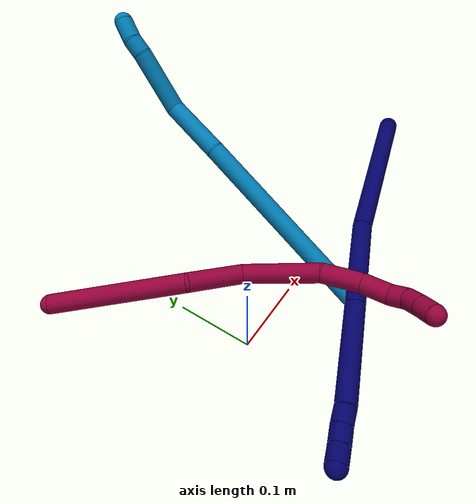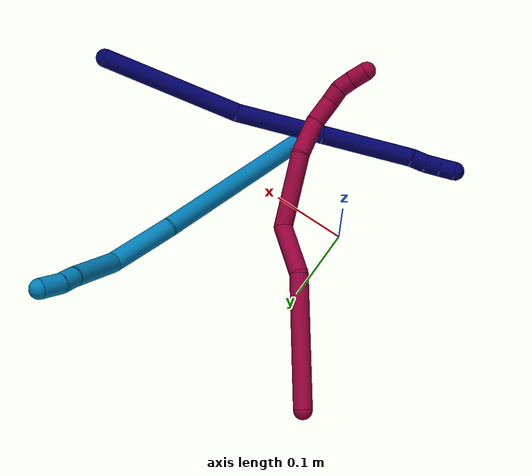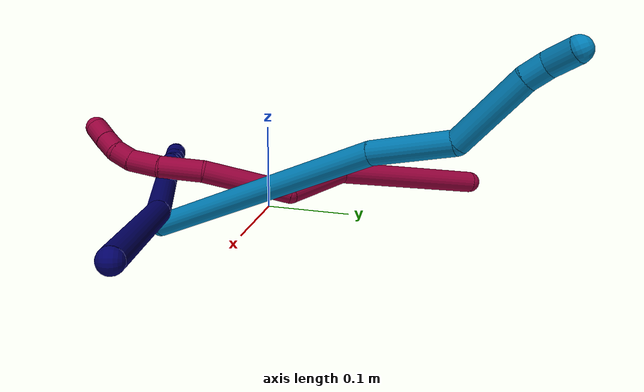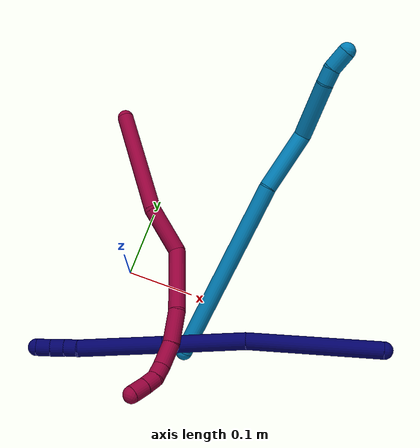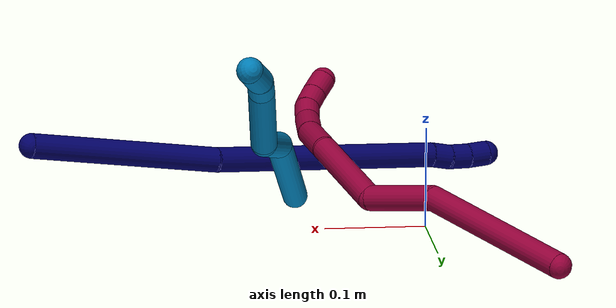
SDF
<sdf version="1.7">
 <world name="default">
  <model name="photoneo_s_sensor">
   <static>1</static>
   <pose>0 0 2 1.57079 1.57079 3.14159</pose>
   <link name="link">
    <inertial><mass>0.1</mass></inertial>
    <sensor name="sensor" type="depth">
     <update_rate>30</update_rate>
     <camera>
      <horizontal_fov>1.22</horizontal_fov>
      <image><width>1920</width><height>1200</height><format>B8G8R8</format></image>
      <clip><near>0.1</near><far>4</far></clip>
      <depth_camera><output>points</output></depth_camera>
     </camera>
     <plugin name="camera_plugin" filename="libgazebo_ros_depth_camera.so">
      <baseline>0.2</baseline>
      <alwaysOn>1</alwaysOn>
      <updateRate>0.0</updateRate>
      <cameraName>camera_ir</cameraName>
      <imageTopicName>/camera/color/image_raw</imageTopicName>
      <cameraInfoTopicName>/camera/color/camera_info</cameraInfoTopicName>
      <depthImageTopicName>/camera/depth/image_raw</depthImageTopicName>
      <depthImageCameraInfoTopicName>/camera/depth/camera_info</depthImageCameraInfoTopicName>
      <pointCloudTopicName>/camera/depth/points</pointCloudTopicName>
      <frameName>fr_optical</frameName>
      <pointCloudCutoff>0.1</pointCloudCutoff>
      <pointCloudCutoffMax>2.0</pointCloudCutoffMax>
      <distortionK1>0</distortionK1>
      <distortionK2>0</distortionK2>
      <distortionK3>0</distortionK3>
      <distortionT1>0</distortionT1>
      <distortionT2>0</distortionT2>
      <CxPrime>0</CxPrime>
      <Cx>0</Cx>
      <Cy>0</Cy>
      <focalLength>0</focalLength>
      <hackBaseline>0</hackBaseline>
     </plugin>
    </sensor>
   </link>
  </model>
  <model name="bin">
   <static>1</static>
   <link name="bottom">
    <collision name="collision-bottom">
     <pose>0 0 -0.01 0 -0 0</pose>
     <geometry><box><size>0.8 0.6 0.02</size></box></geometry>
     <surface>
      <friction><ode><mu>100</mu><mu2>100</mu2></ode></friction>
      <contact><collide_bitmask>65535</collide_bitmask></contact>
     </surface>
    </collision>
   </link>
   <link name="west_wall">
    <collision name="collision-west_wall">
     <pose>-0.41 0 0.1 0 -0 0</pose>
     <geometry><box><size>0.02 0.6 0.2</size></box></geometry>
     <surface>
      <friction><ode><mu>100</mu><mu2>100</mu2></ode></friction>
      <contact><collide_bitmask>65535</collide_bitmask></contact>
     </surface>
    </collision>
   </link>
   <link name="east_wall">
    <collision name="collision-east_wall">
     <pose>0.41 0 0.1 0 -0 0</pose>
     <geometry><box><size>0.02 0.6 0.2</size></box></geometry>
     <surface>
      <friction><ode><mu>100</mu><mu2>100</mu2></ode></friction>
      <contact><collide_bitmask>65535</collide_bitmask></contact>
     </surface>
    </collision>
   </link>
   <link name="south_wall">
    <collision name="collision-south_wall">
     <pose>0 -0.31 0.1 0 -0 0</pose>
     <geometry><box><size>0.8 0.02 0.2</size></box></geometry>
     <surface>
      <friction><ode><mu>100</mu><mu2>100</mu2></ode></friction>
      <contact><collide_bitmask>65535</collide_bitmask></contact>
     </surface>
    </collision>
   </link>
   <link name="north_wall">
    <collision name="collision-north_wall">
     <pose>0 0.31 0.1 0 -0 0</pose>
     <geometry><box><size>0.8 0.02 0.2</size></box></geometry>
     <surface>
      <friction><ode><mu>100</mu><mu2>100</mu2></ode></friction>
      <contact><collide_bitmask>65535</collide_bitmask></contact>
     </surface>
    </collision>
   </link>
  </model>
  <model name="7">
   <static>0</static>
   <link name="7">
    <collision name="collision-cylinder-e_1_1_4">
     <pose>-0.082771 -0.049845 -0.006833 1.70704 -1.02464 -1.14538</pose>
     <geometry><cylinder><radius>0.0125</radius><length>0.193723</length></cylinder></geometry>
     <surface>
      <friction><ode><mu>1.16</mu><mu2>1.16</mu2><slip1>0</slip1><slip2>0</slip2></ode></friction>
      <contact><ode><kp>1e+06</kp><kd>1</kd><max_vel>0</max_vel><min_depth>0.001</min_depth></ode></contact>
     </surface>
    </collision>
    <visual name="visual-cylinder-e_1_1_4">
     <pose>-0.082771 -0.049845 -0.006833 1.70704 -1.02464 -1.14538</pose>
     <geometry><cylinder><radius>0.0125</radius><length>0.193723</length></cylinder></geometry>
     <material><ambient>0.003922 0 0.403922 1</ambient></material>
    </visual>
    <collision name="collision-cylinder-e_2_4_5">
     <pose>-0.218828 -0.127356 -0.010363 1.45195 -1.089 -0.986477</pose>
     <geometry><cylinder><radius>0.0125</radius><length>0.120264</length></cylinder></geometry>
     <surface>
      <friction><ode><mu>1.16</mu><mu2>1.16</mu2><slip1>0</slip1><slip2>0</slip2></ode></friction>
      <contact><ode><kp>1e+06</kp><kd>1</kd><max_vel>0</max_vel><min_depth>0.001</min_depth></ode></contact>
     </surface>
    </collision>
    <visual name="visual-cylinder-e_2_4_5">
     <pose>-0.218828 -0.127356 -0.010363 1.45195 -1.089 -0.986477</pose>
     <geometry><cylinder><radius>0.0125</radius><length>0.120264</length></cylinder></geometry>
     <material><ambient>0.003922 0 0.403922 1</ambient></material>
    </visual>
    <collision name="collision-cylinder-e_3_5_6">
     <pose>-0.326975 -0.183368 -0.003801 1.45634 -1.09121 -0.992256</pose>
     <geometry><cylinder><radius>0.0125</radius><length>0.123674</length></cylinder></geometry>
     <surface>
      <friction><ode><mu>1.16</mu><mu2>1.16</mu2><slip1>0</slip1><slip2>0</slip2></ode></friction>
      <contact><ode><kp>1e+06</kp><kd>1</kd><max_vel>0</max_vel><min_depth>0.001</min_depth></ode></contact>
     </surface>
    </collision>
    <visual name="visual-cylinder-e_3_5_6">
     <pose>-0.326975 -0.183368 -0.003801 1.45634 -1.09121 -0.992256</pose>
     <geometry><cylinder><radius>0.0125</radius><length>0.123674</length></cylinder></geometry>
     <material><ambient>0.003922 0 0.403922 1</ambient></material>
    </visual>
    <collision name="collision-cylinder-e_4_6_7">
     <pose>-0.390213 -0.217352 -0.001054 1.66132 -0.976465 -1.05343</pose>
     <geometry><cylinder><radius>0.0125</radius><length>0.020221</length></cylinder></geometry>
     <surface>
      <friction><ode><mu>1.16</mu><mu2>1.16</mu2><slip1>0</slip1><slip2>0</slip2></ode></friction>
      <contact><ode><kp>1e+06</kp><kd>1</kd><max_vel>0</max_vel><min_depth>0.001</min_depth></ode></contact>
     </surface>
    </collision>
    <visual name="visual-cylinder-e_4_6_7">
     <pose>-0.390213 -0.217352 -0.001054 1.66132 -0.976465 -1.05343</pose>
     <geometry><cylinder><radius>0.0125</radius><length>0.020221</length></cylinder></geometry>
     <material><ambient>0.003922 0 0.403922 1</ambient></material>
    </visual>
    <collision name="collision-cylinder-e_5_7_8">
     <pose>-0.408231 -0.227486 -0.00132 1.51616 -1.13388 -1.08494</pose>
     <geometry><cylinder><radius>0.0125</radius><length>0.021281</length></cylinder></geometry>
     <surface>
      <friction><ode><mu>1.16</mu><mu2>1.16</mu2><slip1>0</slip1><slip2>0</slip2></ode></friction>
      <contact><ode><kp>1e+06</kp><kd>1</kd><max_vel>0</max_vel><min_depth>0.001</min_depth></ode></contact>
     </surface>
    </collision>
    <visual name="visual-cylinder-e_5_7_8">
     <pose>-0.408231 -0.227486 -0.00132 1.51616 -1.13388 -1.08494</pose>
     <geometry><cylinder><radius>0.0125</radius><length>0.021281</length></cylinder></geometry>
     <material><ambient>0.003922 0 0.403922 1</ambient></material>
    </visual>
    <collision name="collision-cylinder-e_6_8_2">
     <pose>-0.427691 -0.235465 -0.001119 1.58363 -1.22993 -1.24205</pose>
     <geometry><cylinder><radius>0.0125</radius><length>0.020837</length></cylinder></geometry>
     <surface>
      <friction><ode><mu>1.16</mu><mu2>1.16</mu2><slip1>0</slip1><slip2>0</slip2></ode></friction>
      <contact><ode><kp>1e+06</kp><kd>1</kd><max_vel>0</max_vel><min_depth>0.001</min_depth></ode></contact>
     </surface>
    </collision>
    <visual name="visual-cylinder-e_6_8_2">
     <pose>-0.427691 -0.235465 -0.001119 1.58363 -1.22993 -1.24205</pose>
     <geometry><cylinder><radius>0.0125</radius><length>0.020837</length></cylinder></geometry>
     <material><ambient>0.003922 0 0.403922 1</ambient></material>
    </visual>
    <collision name="collision-sphere-2">
     <pose>-0.43751 -0.238948 -0.001163 0 -0 0</pose>
     <geometry><sphere><radius>0.0125</radius></sphere></geometry>
     <surface>
      <friction><ode><mu>1.16</mu><mu2>1.16</mu2><slip1>0</slip1><slip2>0</slip2></ode></friction>
      <contact><ode><kp>1e+06</kp><kd>1</kd><max_vel>0</max_vel><min_depth>0.001</min_depth></ode></contact>
     </surface>
    </collision>
    <visual name="visual-sphere-2">
     <pose>-0.43751 -0.238948 -0.001163 0 -0 0</pose>
     <geometry><sphere><radius>0.0125</radius></sphere></geometry>
     <material><ambient>0.003922 0 0.403922 1</ambient></material>
    </visual>
    <collision name="collision-sphere-4">
     <pose>-0.165541 -0.099689 -0.013667 0 -0 0</pose>
     <geometry><sphere><radius>0.0125</radius></sphere></geometry>
     <surface>
      <friction><ode><mu>1.16</mu><mu2>1.16</mu2><slip1>0</slip1><slip2>0</slip2></ode></friction>
      <contact><ode><kp>1e+06</kp><kd>1</kd><max_vel>0</max_vel><min_depth>0.001</min_depth></ode></contact>
     </surface>
    </collision>
    <visual name="visual-sphere-4">
     <pose>-0.165541 -0.099689 -0.013667 0 -0 0</pose>
     <geometry><sphere><radius>0.0125</radius></sphere></geometry>
     <material><ambient>0.003922 0 0.403922 1</ambient></material>
    </visual>
    <collision name="collision-sphere-1">
     <geometry><sphere><radius>0.0125</radius></sphere></geometry>
     <surface>
      <friction><ode><mu>1.16</mu><mu2>1.16</mu2><slip1>0</slip1><slip2>0</slip2></ode></friction>
      <contact><ode><kp>1e+06</kp><kd>1</kd><max_vel>0</max_vel><min_depth>0.001</min_depth></ode></contact>
     </surface>
    </collision>
    <visual name="visual-sphere-1">
     <geometry><sphere><radius>0.0125</radius></sphere></geometry>
     <material><ambient>0.003922 0 0.403922 1</ambient></material>
    </visual>
    <collision name="collision-sphere-8">
     <pose>-0.417872 -0.231982 -0.001074 0 -0 0</pose>
     <geometry><sphere><radius>0.0125</radius></sphere></geometry>
     <surface>
      <friction><ode><mu>1.16</mu><mu2>1.16</mu2><slip1>0</slip1><slip2>0</slip2></ode></friction>
      <contact><ode><kp>1e+06</kp><kd>1</kd><max_vel>0</max_vel><min_depth>0.001</min_depth></ode></contact>
     </surface>
    </collision>
    <visual name="visual-sphere-8">
     <pose>-0.417872 -0.231982 -0.001074 0 -0 0</pose>
     <geometry><sphere><radius>0.0125</radius></sphere></geometry>
     <material><ambient>0.003922 0 0.403922 1</ambient></material>
    </visual>
    <collision name="collision-sphere-5">
     <pose>-0.272115 -0.155023 -0.007059 0 -0 0</pose>
     <geometry><sphere><radius>0.0125</radius></sphere></geometry>
     <surface>
      <friction><ode><mu>1.16</mu><mu2>1.16</mu2><slip1>0</slip1><slip2>0</slip2></ode></friction>
      <contact><ode><kp>1e+06</kp><kd>1</kd><max_vel>0</max_vel><min_depth>0.001</min_depth></ode></contact>
     </surface>
    </collision>
    <visual name="visual-sphere-5">
     <pose>-0.272115 -0.155023 -0.007059 0 -0 0</pose>
     <geometry><sphere><radius>0.0125</radius></sphere></geometry>
     <material><ambient>0.003922 0 0.403922 1</ambient></material>
    </visual>
    <collision name="collision-sphere-6">
     <pose>-0.381836 -0.211714 -0.000542 0 -0 0</pose>
     <geometry><sphere><radius>0.0125</radius></sphere></geometry>
     <surface>
      <friction><ode><mu>1.16</mu><mu2>1.16</mu2><slip1>0</slip1><slip2>0</slip2></ode></friction>
      <contact><ode><kp>1e+06</kp><kd>1</kd><max_vel>0</max_vel><min_depth>0.001</min_depth></ode></contact>
     </surface>
    </collision>
    <visual name="visual-sphere-6">
     <pose>-0.381836 -0.211714 -0.000542 0 -0 0</pose>
     <geometry><sphere><radius>0.0125</radius></sphere></geometry>
     <material><ambient>0.003922 0 0.403922 1</ambient></material>
    </visual>
    <collision name="collision-sphere-7">
     <pose>-0.39859 -0.22299 -0.001566 0 -0 0</pose>
     <geometry><sphere><radius>0.0125</radius></sphere></geometry>
     <surface>
      <friction><ode><mu>1.16</mu><mu2>1.16</mu2><slip1>0</slip1><slip2>0</slip2></ode></friction>
      <contact><ode><kp>1e+06</kp><kd>1</kd><max_vel>0</max_vel><min_depth>0.001</min_depth></ode></contact>
     </surface>
    </collision>
    <visual name="visual-sphere-7">
     <pose>-0.39859 -0.22299 -0.001566 0 -0 0</pose>
     <geometry><sphere><radius>0.0125</radius></sphere></geometry>
     <material><ambient>0.003922 0 0.403922 1</ambient></material>
    </visual>
    <inertial>
     <pose>-0.21656 -0.123586 -0.006226 0 -0 0</pose>
     <mass>0.5</mass>
     <inertia>
      <ixx>-0.000235</ixx>
      <ixy>0</ixy>
      <ixz>0</ixz>
      <iyy>0.000261</iyy>
      <iyz>0</iyz>
      <izz>0.001266</izz>
     </inertia>
    </inertial>
   </link>
   <pose>0.388501 -0.001428 0.091191 1.56014 0.38096 0.319624</pose>
  </model>
  <model name="8">
   <static>0</static>
   <link name="8">
    <collision name="collision-cylinder-e_1_1_4">
     <pose>0.055044 -0.001832 -0.068709 3.11493 0.675247 3.06569</pose>
     <geometry><cylinder><radius>0.0125</radius><length>0.176115</length></cylinder></geometry>
     <surface>
      <friction><ode><mu>1.16</mu><mu2>1.16</mu2><slip1>0</slip1><slip2>0</slip2></ode></friction>
      <contact><ode><kp>1e+06</kp><kd>1</kd><max_vel>0</max_vel><min_depth>0.001</min_depth></ode></contact>
     </surface>
    </collision>
    <visual name="visual-cylinder-e_1_1_4">
     <pose>0.055044 -0.001832 -0.068709 3.11493 0.675247 3.06569</pose>
     <geometry><cylinder><radius>0.0125</radius><length>0.176115</length></cylinder></geometry>
     <material><ambient>0.584314 0 0.227451 1</ambient></material>
    </visual>
    <collision name="collision-cylinder-e_2_4_5">
     <pose>0.137384 0.008042 -0.15867 -2.63812 0.844171 -2.10137</pose>
     <geometry><cylinder><radius>0.0125</radius><length>0.073042</length></cylinder></geometry>
     <surface>
      <friction><ode><mu>1.16</mu><mu2>1.16</mu2><slip1>0</slip1><slip2>0</slip2></ode></friction>
      <contact><ode><kp>1e+06</kp><kd>1</kd><max_vel>0</max_vel><min_depth>0.001</min_depth></ode></contact>
     </surface>
    </collision>
    <visual name="visual-cylinder-e_2_4_5">
     <pose>0.137384 0.008042 -0.15867 -2.63812 0.844171 -2.10137</pose>
     <geometry><cylinder><radius>0.0125</radius><length>0.073042</length></cylinder></geometry>
     <material><ambient>0.584314 0 0.227451 1</ambient></material>
    </visual>
    <collision name="collision-cylinder-e_3_5_6">
     <pose>0.185482 0.012317 -0.225351 2.97945 0.424414 2.42037</pose>
     <geometry><cylinder><radius>0.0125</radius><length>0.101029</length></cylinder></geometry>
     <surface>
      <friction><ode><mu>1.16</mu><mu2>1.16</mu2><slip1>0</slip1><slip2>0</slip2></ode></friction>
      <contact><ode><kp>1e+06</kp><kd>1</kd><max_vel>0</max_vel><min_depth>0.001</min_depth></ode></contact>
     </surface>
    </collision>
    <visual name="visual-cylinder-e_3_5_6">
     <pose>0.185482 0.012317 -0.225351 2.97945 0.424414 2.42037</pose>
     <geometry><cylinder><radius>0.0125</radius><length>0.101029</length></cylinder></geometry>
     <material><ambient>0.584314 0 0.227451 1</ambient></material>
    </visual>
    <collision name="collision-cylinder-e_4_6_7">
     <pose>0.211925 0.005395 -0.294703 -3.12031 0.231576 -2.95913</pose>
     <geometry><cylinder><radius>0.0125</radius><length>0.049168</length></cylinder></geometry>
     <surface>
      <friction><ode><mu>1.16</mu><mu2>1.16</mu2><slip1>0</slip1><slip2>0</slip2></ode></friction>
      <contact><ode><kp>1e+06</kp><kd>1</kd><max_vel>0</max_vel><min_depth>0.001</min_depth></ode></contact>
     </surface>
    </collision>
    <visual name="visual-cylinder-e_4_6_7">
     <pose>0.211925 0.005395 -0.294703 -3.12031 0.231576 -2.95913</pose>
     <geometry><cylinder><radius>0.0125</radius><length>0.049168</length></cylinder></geometry>
     <material><ambient>0.584314 0 0.227451 1</ambient></material>
    </visual>
    <collision name="collision-cylinder-e_5_7_8">
     <pose>0.217949 0.004976 -0.336456 3.08961 0.021321 0.778395</pose>
     <geometry><cylinder><radius>0.0125</radius><length>0.035717</length></cylinder></geometry>
     <surface>
      <friction><ode><mu>1.16</mu><mu2>1.16</mu2><slip1>0</slip1><slip2>0</slip2></ode></friction>
      <contact><ode><kp>1e+06</kp><kd>1</kd><max_vel>0</max_vel><min_depth>0.001</min_depth></ode></contact>
     </surface>
    </collision>
    <visual name="visual-cylinder-e_5_7_8">
     <pose>0.217949 0.004976 -0.336456 3.08961 0.021321 0.778395</pose>
     <geometry><cylinder><radius>0.0125</radius><length>0.035717</length></cylinder></geometry>
     <material><ambient>0.584314 0 0.227451 1</ambient></material>
    </visual>
    <collision name="collision-cylinder-e_6_8_9">
     <pose>0.218656 0.000149 -0.36418 2.76611 0.030685 0.16118</pose>
     <geometry><cylinder><radius>0.0125</radius><length>0.021279</length></cylinder></geometry>
     <surface>
      <friction><ode><mu>1.16</mu><mu2>1.16</mu2><slip1>0</slip1><slip2>0</slip2></ode></friction>
      <contact><ode><kp>1e+06</kp><kd>1</kd><max_vel>0</max_vel><min_depth>0.001</min_depth></ode></contact>
     </surface>
    </collision>
    <visual name="visual-cylinder-e_6_8_9">
     <pose>0.218656 0.000149 -0.36418 2.76611 0.030685 0.16118</pose>
     <geometry><cylinder><radius>0.0125</radius><length>0.021279</length></cylinder></geometry>
     <material><ambient>0.584314 0 0.227451 1</ambient></material>
    </visual>
    <collision name="collision-cylinder-e_7_9_10">
     <pose>0.215723 -0.008544 -0.382639 2.63146 -0.320602 -1.11013</pose>
     <geometry><cylinder><radius>0.0125</radius><length>0.020684</length></cylinder></geometry>
     <surface>
      <friction><ode><mu>1.16</mu><mu2>1.16</mu2><slip1>0</slip1><slip2>0</slip2></ode></friction>
      <contact><ode><kp>1e+06</kp><kd>1</kd><max_vel>0</max_vel><min_depth>0.001</min_depth></ode></contact>
     </surface>
    </collision>
    <visual name="visual-cylinder-e_7_9_10">
     <pose>0.215723 -0.008544 -0.382639 2.63146 -0.320602 -1.11013</pose>
     <geometry><cylinder><radius>0.0125</radius><length>0.020684</length></cylinder></geometry>
     <material><ambient>0.584314 0 0.227451 1</ambient></material>
    </visual>
    <collision name="collision-cylinder-e_8_10_2">
     <pose>0.20815 -0.018783 -0.400347 2.60433 -0.385133 -1.23255</pose>
     <geometry><cylinder><radius>0.0125</radius><length>0.022966</length></cylinder></geometry>
     <surface>
      <friction><ode><mu>1.16</mu><mu2>1.16</mu2><slip1>0</slip1><slip2>0</slip2></ode></friction>
      <contact><ode><kp>1e+06</kp><kd>1</kd><max_vel>0</max_vel><min_depth>0.001</min_depth></ode></contact>
     </surface>
    </collision>
    <visual name="visual-cylinder-e_8_10_2">
     <pose>0.20815 -0.018783 -0.400347 2.60433 -0.385133 -1.23255</pose>
     <geometry><cylinder><radius>0.0125</radius><length>0.022966</length></cylinder></geometry>
     <material><ambient>0.584314 0 0.227451 1</ambient></material>
    </visual>
    <collision name="collision-sphere-2">
     <pose>0.203836 -0.024229 -0.409489 0 -0 0</pose>
     <geometry><sphere><radius>0.0125</radius></sphere></geometry>
     <surface>
      <friction><ode><mu>1.16</mu><mu2>1.16</mu2><slip1>0</slip1><slip2>0</slip2></ode></friction>
      <contact><ode><kp>1e+06</kp><kd>1</kd><max_vel>0</max_vel><min_depth>0.001</min_depth></ode></contact>
     </surface>
    </collision>
    <visual name="visual-sphere-2">
     <pose>0.203836 -0.024229 -0.409489 0 -0 0</pose>
     <geometry><sphere><radius>0.0125</radius></sphere></geometry>
     <material><ambient>0.584314 0 0.227451 1</ambient></material>
    </visual>
    <collision name="collision-sphere-10">
     <pose>0.212464 -0.013336 -0.391204 0 -0 0</pose>
     <geometry><sphere><radius>0.0125</radius></sphere></geometry>
     <surface>
      <friction><ode><mu>1.16</mu><mu2>1.16</mu2><slip1>0</slip1><slip2>0</slip2></ode></friction>
      <contact><ode><kp>1e+06</kp><kd>1</kd><max_vel>0</max_vel><min_depth>0.001</min_depth></ode></contact>
     </surface>
    </collision>
    <visual name="visual-sphere-10">
     <pose>0.212464 -0.013336 -0.391204 0 -0 0</pose>
     <geometry><sphere><radius>0.0125</radius></sphere></geometry>
     <material><ambient>0.584314 0 0.227451 1</ambient></material>
    </visual>
    <collision name="collision-sphere-9">
     <pose>0.218982 -0.003751 -0.374073 0 -0 0</pose>
     <geometry><sphere><radius>0.0125</radius></sphere></geometry>
     <surface>
      <friction><ode><mu>1.16</mu><mu2>1.16</mu2><slip1>0</slip1><slip2>0</slip2></ode></friction>
      <contact><ode><kp>1e+06</kp><kd>1</kd><max_vel>0</max_vel><min_depth>0.001</min_depth></ode></contact>
     </surface>
    </collision>
    <visual name="visual-sphere-9">
     <pose>0.218982 -0.003751 -0.374073 0 -0 0</pose>
     <geometry><sphere><radius>0.0125</radius></sphere></geometry>
     <material><ambient>0.584314 0 0.227451 1</ambient></material>
    </visual>
    <collision name="collision-sphere-4">
     <pose>0.110088 -0.003664 -0.137418 0 -0 0</pose>
     <geometry><sphere><radius>0.0125</radius></sphere></geometry>
     <surface>
      <friction><ode><mu>1.16</mu><mu2>1.16</mu2><slip1>0</slip1><slip2>0</slip2></ode></friction>
      <contact><ode><kp>1e+06</kp><kd>1</kd><max_vel>0</max_vel><min_depth>0.001</min_depth></ode></contact>
     </surface>
    </collision>
    <visual name="visual-sphere-4">
     <pose>0.110088 -0.003664 -0.137418 0 -0 0</pose>
     <geometry><sphere><radius>0.0125</radius></sphere></geometry>
     <material><ambient>0.584314 0 0.227451 1</ambient></material>
    </visual>
    <collision name="collision-sphere-1">
     <geometry><sphere><radius>0.0125</radius></sphere></geometry>
     <surface>
      <friction><ode><mu>1.16</mu><mu2>1.16</mu2><slip1>0</slip1><slip2>0</slip2></ode></friction>
      <contact><ode><kp>1e+06</kp><kd>1</kd><max_vel>0</max_vel><min_depth>0.001</min_depth></ode></contact>
     </surface>
    </collision>
    <visual name="visual-sphere-1">
     <geometry><sphere><radius>0.0125</radius></sphere></geometry>
     <material><ambient>0.584314 0 0.227451 1</ambient></material>
    </visual>
    <collision name="collision-sphere-8">
     <pose>0.218329 0.004049 -0.354286 0 -0 0</pose>
     <geometry><sphere><radius>0.0125</radius></sphere></geometry>
     <surface>
      <friction><ode><mu>1.16</mu><mu2>1.16</mu2><slip1>0</slip1><slip2>0</slip2></ode></friction>
      <contact><ode><kp>1e+06</kp><kd>1</kd><max_vel>0</max_vel><min_depth>0.001</min_depth></ode></contact>
     </surface>
    </collision>
    <visual name="visual-sphere-8">
     <pose>0.218329 0.004049 -0.354286 0 -0 0</pose>
     <geometry><sphere><radius>0.0125</radius></sphere></geometry>
     <material><ambient>0.584314 0 0.227451 1</ambient></material>
    </visual>
    <collision name="collision-sphere-5">
     <pose>0.16468 0.019748 -0.179922 0 -0 0</pose>
     <geometry><sphere><radius>0.0125</radius></sphere></geometry>
     <surface>
      <friction><ode><mu>1.16</mu><mu2>1.16</mu2><slip1>0</slip1><slip2>0</slip2></ode></friction>
      <contact><ode><kp>1e+06</kp><kd>1</kd><max_vel>0</max_vel><min_depth>0.001</min_depth></ode></contact>
     </surface>
    </collision>
    <visual name="visual-sphere-5">
     <pose>0.16468 0.019748 -0.179922 0 -0 0</pose>
     <geometry><sphere><radius>0.0125</radius></sphere></geometry>
     <material><ambient>0.584314 0 0.227451 1</ambient></material>
    </visual>
    <collision name="collision-sphere-6">
     <pose>0.206283 0.004886 -0.270781 0 -0 0</pose>
     <geometry><sphere><radius>0.0125</radius></sphere></geometry>
     <surface>
      <friction><ode><mu>1.16</mu><mu2>1.16</mu2><slip1>0</slip1><slip2>0</slip2></ode></friction>
      <contact><ode><kp>1e+06</kp><kd>1</kd><max_vel>0</max_vel><min_depth>0.001</min_depth></ode></contact>
     </surface>
    </collision>
    <visual name="visual-sphere-6">
     <pose>0.206283 0.004886 -0.270781 0 -0 0</pose>
     <geometry><sphere><radius>0.0125</radius></sphere></geometry>
     <material><ambient>0.584314 0 0.227451 1</ambient></material>
    </visual>
    <collision name="collision-sphere-7">
     <pose>0.217568 0.005904 -0.318626 0 -0 0</pose>
     <geometry><sphere><radius>0.0125</radius></sphere></geometry>
     <surface>
      <friction><ode><mu>1.16</mu><mu2>1.16</mu2><slip1>0</slip1><slip2>0</slip2></ode></friction>
      <contact><ode><kp>1e+06</kp><kd>1</kd><max_vel>0</max_vel><min_depth>0.001</min_depth></ode></contact>
     </surface>
    </collision>
    <visual name="visual-sphere-7">
     <pose>0.217568 0.005904 -0.318626 0 -0 0</pose>
     <geometry><sphere><radius>0.0125</radius></sphere></geometry>
     <material><ambient>0.584314 0 0.227451 1</ambient></material>
    </visual>
    <inertial>
     <pose>0.141135 0.002694 -0.195645 0 -0 0</pose>
     <mass>0.5</mass>
     <inertia>
      <ixx>-0.000362</ixx>
      <ixy>0</ixy>
      <ixz>0</ixz>
      <iyy>0.000622</iyy>
      <iyz>0</iyz>
      <izz>-0.000372</izz>
     </inertia>
    </inertial>
   </link>
   <pose>-0.098487 0.230879 0.021709 -1.63553 -0.176712 -0.023346</pose>
  </model>
  <model name="9">
   <static>0</static>
   <link name="9">
    <collision name="collision-cylinder-e_1_1_4">
     <pose>-0.00202 0.04284 0.12955 -0.319367 -0.014802 0.002384</pose>
     <geometry><cylinder><radius>0.0125</radius><length>0.272929</length></cylinder></geometry>
     <surface>
      <friction><ode><mu>1.16</mu><mu2>1.16</mu2><slip1>0</slip1><slip2>0</slip2></ode></friction>
      <contact><ode><kp>1e+06</kp><kd>1</kd><max_vel>0</max_vel><min_depth>0.001</min_depth></ode></contact>
     </surface>
    </collision>
    <visual name="visual-cylinder-e_1_1_4">
     <pose>-0.00202 0.04284 0.12955 -0.319367 -0.014802 0.002384</pose>
     <geometry><cylinder><radius>0.0125</radius><length>0.272929</length></cylinder></geometry>
     <material><ambient>0 0.490196 0.709804 1</ambient></material>
    </visual>
    <collision name="collision-cylinder-e_2_4_5">
     <pose>-0.012634 0.103183 0.299289 -0.410715 -0.193608 0.040448</pose>
     <geometry><cylinder><radius>0.0125</radius><length>0.089339</length></cylinder></geometry>
     <surface>
      <friction><ode><mu>1.16</mu><mu2>1.16</mu2><slip1>0</slip1><slip2>0</slip2></ode></friction>
      <contact><ode><kp>1e+06</kp><kd>1</kd><max_vel>0</max_vel><min_depth>0.001</min_depth></ode></contact>
     </surface>
    </collision>
    <visual name="visual-cylinder-e_2_4_5">
     <pose>-0.012634 0.103183 0.299289 -0.410715 -0.193608 0.040448</pose>
     <geometry><cylinder><radius>0.0125</radius><length>0.089339</length></cylinder></geometry>
     <material><ambient>0 0.490196 0.709804 1</ambient></material>
    </visual>
    <collision name="collision-cylinder-e_3_5_6">
     <pose>-0.004888 0.13297 0.376771 -0.318255 0.394365 -0.064101</pose>
     <geometry><cylinder><radius>0.0125</radius><length>0.085057</length></cylinder></geometry>
     <surface>
      <friction><ode><mu>1.16</mu><mu2>1.16</mu2><slip1>0</slip1><slip2>0</slip2></ode></friction>
      <contact><ode><kp>1e+06</kp><kd>1</kd><max_vel>0</max_vel><min_depth>0.001</min_depth></ode></contact>
     </surface>
    </collision>
    <visual name="visual-cylinder-e_3_5_6">
     <pose>-0.004888 0.13297 0.376771 -0.318255 0.394365 -0.064101</pose>
     <geometry><cylinder><radius>0.0125</radius><length>0.085057</length></cylinder></geometry>
     <material><ambient>0 0.490196 0.709804 1</ambient></material>
    </visual>
    <collision name="collision-cylinder-e_4_6_7">
     <pose>0.013736 0.148781 0.424601 -0.322707 0.202726 -0.033108</pose>
     <geometry><cylinder><radius>0.0125</radius><length>0.022688</length></cylinder></geometry>
     <surface>
      <friction><ode><mu>1.16</mu><mu2>1.16</mu2><slip1>0</slip1><slip2>0</slip2></ode></friction>
      <contact><ode><kp>1e+06</kp><kd>1</kd><max_vel>0</max_vel><min_depth>0.001</min_depth></ode></contact>
     </surface>
    </collision>
    <visual name="visual-cylinder-e_4_6_7">
     <pose>0.013736 0.148781 0.424601 -0.322707 0.202726 -0.033108</pose>
     <geometry><cylinder><radius>0.0125</radius><length>0.022688</length></cylinder></geometry>
     <material><ambient>0 0.490196 0.709804 1</ambient></material>
    </visual>
    <collision name="collision-cylinder-e_5_7_2">
     <pose>0.017604 0.16052 0.447581 -0.58362 0.105827 -0.031816</pose>
     <geometry><cylinder><radius>0.0125</radius><length>0.029987</length></cylinder></geometry>
     <surface>
      <friction><ode><mu>1.16</mu><mu2>1.16</mu2><slip1>0</slip1><slip2>0</slip2></ode></friction>
      <contact><ode><kp>1e+06</kp><kd>1</kd><max_vel>0</max_vel><min_depth>0.001</min_depth></ode></contact>
     </surface>
    </collision>
    <visual name="visual-cylinder-e_5_7_2">
     <pose>0.017604 0.16052 0.447581 -0.58362 0.105827 -0.031816</pose>
     <geometry><cylinder><radius>0.0125</radius><length>0.029987</length></cylinder></geometry>
     <material><ambient>0 0.490196 0.709804 1</ambient></material>
    </visual>
    <collision name="collision-sphere-2">
     <pose>0.019188 0.168736 0.460023 0 -0 0</pose>
     <geometry><sphere><radius>0.0125</radius></sphere></geometry>
     <surface>
      <friction><ode><mu>1.16</mu><mu2>1.16</mu2><slip1>0</slip1><slip2>0</slip2></ode></friction>
      <contact><ode><kp>1e+06</kp><kd>1</kd><max_vel>0</max_vel><min_depth>0.001</min_depth></ode></contact>
     </surface>
    </collision>
    <visual name="visual-sphere-2">
     <pose>0.019188 0.168736 0.460023 0 -0 0</pose>
     <geometry><sphere><radius>0.0125</radius></sphere></geometry>
     <material><ambient>0 0.490196 0.709804 1</ambient></material>
    </visual>
    <collision name="collision-sphere-7">
     <pose>0.01602 0.152304 0.43514 0 -0 0</pose>
     <geometry><sphere><radius>0.0125</radius></sphere></geometry>
     <surface>
      <friction><ode><mu>1.16</mu><mu2>1.16</mu2><slip1>0</slip1><slip2>0</slip2></ode></friction>
      <contact><ode><kp>1e+06</kp><kd>1</kd><max_vel>0</max_vel><min_depth>0.001</min_depth></ode></contact>
     </surface>
    </collision>
    <visual name="visual-sphere-7">
     <pose>0.01602 0.152304 0.43514 0 -0 0</pose>
     <geometry><sphere><radius>0.0125</radius></sphere></geometry>
     <material><ambient>0 0.490196 0.709804 1</ambient></material>
    </visual>
    <collision name="collision-sphere-6">
     <pose>0.011452 0.145257 0.414063 0 -0 0</pose>
     <geometry><sphere><radius>0.0125</radius></sphere></geometry>
     <surface>
      <friction><ode><mu>1.16</mu><mu2>1.16</mu2><slip1>0</slip1><slip2>0</slip2></ode></friction>
      <contact><ode><kp>1e+06</kp><kd>1</kd><max_vel>0</max_vel><min_depth>0.001</min_depth></ode></contact>
     </surface>
    </collision>
    <visual name="visual-sphere-6">
     <pose>0.011452 0.145257 0.414063 0 -0 0</pose>
     <geometry><sphere><radius>0.0125</radius></sphere></geometry>
     <material><ambient>0 0.490196 0.709804 1</ambient></material>
    </visual>
    <collision name="collision-sphere-5">
     <pose>-0.021229 0.120684 0.339478 0 -0 0</pose>
     <geometry><sphere><radius>0.0125</radius></sphere></geometry>
     <surface>
      <friction><ode><mu>1.16</mu><mu2>1.16</mu2><slip1>0</slip1><slip2>0</slip2></ode></friction>
      <contact><ode><kp>1e+06</kp><kd>1</kd><max_vel>0</max_vel><min_depth>0.001</min_depth></ode></contact>
     </surface>
    </collision>
    <visual name="visual-sphere-5">
     <pose>-0.021229 0.120684 0.339478 0 -0 0</pose>
     <geometry><sphere><radius>0.0125</radius></sphere></geometry>
     <material><ambient>0 0.490196 0.709804 1</ambient></material>
    </visual>
    <collision name="collision-sphere-1">
     <geometry><sphere><radius>0.0125</radius></sphere></geometry>
     <surface>
      <friction><ode><mu>1.16</mu><mu2>1.16</mu2><slip1>0</slip1><slip2>0</slip2></ode></friction>
      <contact><ode><kp>1e+06</kp><kd>1</kd><max_vel>0</max_vel><min_depth>0.001</min_depth></ode></contact>
     </surface>
    </collision>
    <visual name="visual-sphere-1">
     <geometry><sphere><radius>0.0125</radius></sphere></geometry>
     <material><ambient>0 0.490196 0.709804 1</ambient></material>
    </visual>
    <collision name="collision-sphere-4">
     <pose>-0.00404 0.085681 0.2591 0 -0 0</pose>
     <geometry><sphere><radius>0.0125</radius></sphere></geometry>
     <surface>
      <friction><ode><mu>1.16</mu><mu2>1.16</mu2><slip1>0</slip1><slip2>0</slip2></ode></friction>
      <contact><ode><kp>1e+06</kp><kd>1</kd><max_vel>0</max_vel><min_depth>0.001</min_depth></ode></contact>
     </surface>
    </collision>
    <visual name="visual-sphere-4">
     <pose>-0.00404 0.085681 0.2591 0 -0 0</pose>
     <geometry><sphere><radius>0.0125</radius></sphere></geometry>
     <material><ambient>0 0.490196 0.709804 1</ambient></material>
    </visual>
    <inertial>
     <pose>-0.002513 0.08082 0.234396 0 -0 0</pose>
     <mass>0.5</mass>
     <inertia>
      <ixx>0.001827</ixx>
      <ixy>0</ixy>
      <ixz>0</ixz>
      <iyy>0.00175</iyy>
      <iyz>0</iyz>
      <izz>-0.000527</izz>
     </inertia>
    </inertial>
   </link>
   <pose>0.121373 -0.086438 0.011498 0.406055 -1.11564 -1.82396</pose>
  </model>
 </world>
</sdf>
